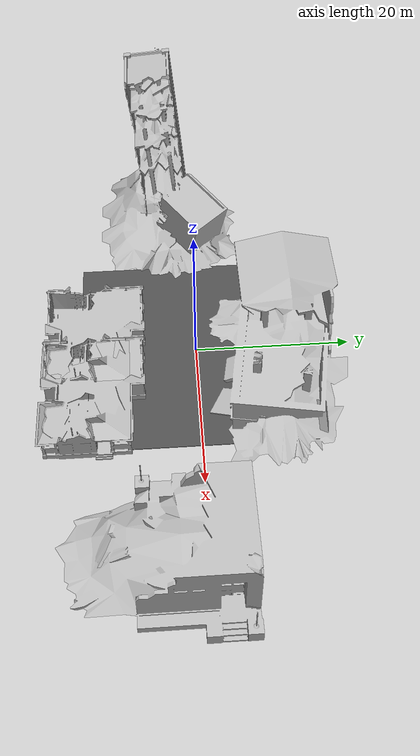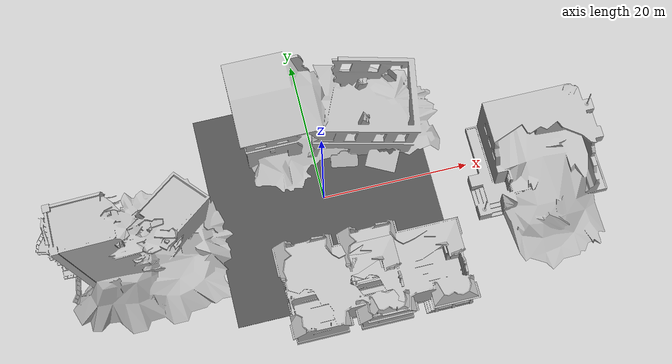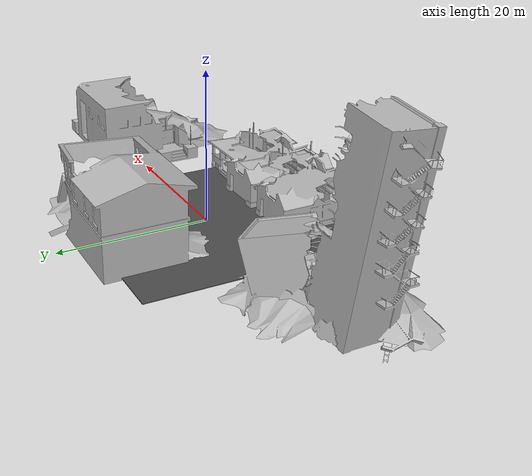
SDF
<sdf version="1.6">
 <world name="default">
  <light name="sun" type="directional">
   <pose>0 0 10 0 -0 0</pose>
   <diffuse>0.8 0.8 0.8 1</diffuse>
   <specular>0.2 0.2 0.2 1</specular>
   <attenuation>
    <range>1000</range>
    <constant>0.9</constant>
    <linear>0.01</linear>
    <quadratic>0.001</quadratic>
   </attenuation>
   <direction>-0.5 0.1 -0.9</direction>
  </light>
  <model name="asphalt_plane">
   <pose>-0.069951 0.061306 0 0 -0 0</pose>
   <static>1</static>
   <link name="link">
    <collision name="collision"><geometry><box><size>30 30 0.1</size></box></geometry></collision>
    <visual name="visual">
     <cast_shadows>0</cast_shadows>
     <geometry><box><size>30 30 0.1</size></box></geometry>
     <material>
      <script>
       <uri>model://asphalt_plane/materials/scripts</uri>
       <uri>model://asphalt_plane/materials/textures</uri>
       <name>vrc/asphalt</name>
      </script>
     </material>
    </visual>
   </link>
  </model>
  <physics name="default_physics" default="0" type="ode">
   <ode>
    <solver>
     <type>quick</type>
     <iters>10</iters>
     <sor>1.3</sor>
     <use_dynamic_moi_rescaling>0</use_dynamic_moi_rescaling>
    </solver>
    <constraints>
     <cfm>0</cfm>
     <erp>0.2</erp>
     <contact_max_correcting_vel>100</contact_max_correcting_vel>
     <contact_surface_layer>0.001</contact_surface_layer>
    </constraints>
   </ode>
   <max_step_size>0.002</max_step_size>
   <real_time_factor>1</real_time_factor>
   <real_time_update_rate>500</real_time_update_rate>
  </physics>
  <gravity>0 0 -9.8066</gravity>
  <magnetic_field>6e-06 2.3e-05 -4.2e-05</magnetic_field>
  <atmosphere type="adiabatic"/>
  <scene><ambient>0.4 0.4 0.4 1</ambient><background>0.7 0.7 0.7 1</background><shadows>1</shadows></scene>
  <spherical_coordinates>
   <surface_model>EARTH_WGS84</surface_model>
   <latitude_deg>0</latitude_deg>
   <longitude_deg>0</longitude_deg>
   <elevation>0</elevation>
   <heading_deg>0</heading_deg>
  </spherical_coordinates>
  <model name="collapsed_fire_station">
   <static>1</static>
   <link name="link">
    <collision name="collision">
     <geometry><mesh><uri>model://collapsed_fire_station/meshes/collapsed_fire_station.dae</uri></mesh></geometry>
    </collision>
    <visual name="visual">
     <geometry><mesh><uri>model://collapsed_fire_station/meshes/collapsed_fire_station.dae</uri></mesh></geometry>
    </visual>
   </link>
   <pose>4.34422 10.3245 0 0 -0 0</pose>
  </model>
  <model name="collapsed_industrial">
   <static>1</static>
   <link name="link">
    <collision name="collision">
     <geometry><mesh><uri>model://collapsed_industrial/meshes/collapsed_industrial.dae</uri></mesh></geometry>
    </collision>
    <visual name="visual">
     <geometry><mesh><uri>model://collapsed_industrial/meshes/collapsed_industrial.dae</uri></mesh></geometry>
    </visual>
   </link>
   <pose>-25.2198 -3.54553 0 0 -0 0</pose>
  </model>
  <model name="collapsed_house">
   <static>1</static>
   <link name="link">
    <collision name="collision">
     <geometry>
      <mesh><scale>1.5 1.5 1.5</scale><uri>model://collapsed_house/meshes/collapsed_house.dae</uri></mesh>
     </geometry>
    </collision>
    <visual name="visual">
     <geometry>
      <mesh><scale>1.5 1.5 1.5</scale><uri>model://collapsed_house/meshes/collapsed_house.dae</uri></mesh>
     </geometry>
    </visual>
   </link>
   <pose>8.12284 -13.0192 0 0 -0 0</pose>
  </model>
  <model name="collapsed_police_station">
   <static>1</static>
   <link name="link">
    <collision name="collision">
     <geometry>
      <mesh><uri>model://collapsed_police_station/meshes/collapsed_police_station.dae</uri></mesh>
     </geometry>
    </collision>
    <visual name="visual">
     <geometry>
      <mesh><uri>model://collapsed_police_station/meshes/collapsed_police_station.dae</uri></mesh>
     </geometry>
    </visual>
   </link>
   <pose>29.3741 -6.09918 0 0 -0 0</pose>
  </model>
  <model name="collapsed_house_0">
   <static>1</static>
   <link name="link">
    <collision name="collision">
     <geometry>
      <mesh><scale>1.5 1.5 1.5</scale><uri>model://collapsed_house/meshes/collapsed_house.dae</uri></mesh>
     </geometry>
    </collision>
    <visual name="visual">
     <geometry>
      <mesh><scale>1.5 1.5 1.5</scale><uri>model://collapsed_house/meshes/collapsed_house.dae</uri></mesh>
     </geometry>
    </visual>
   </link>
   <pose>-0.499658 -12.901 0 0 -0 0</pose>
  </model>
 </world>
</sdf>
